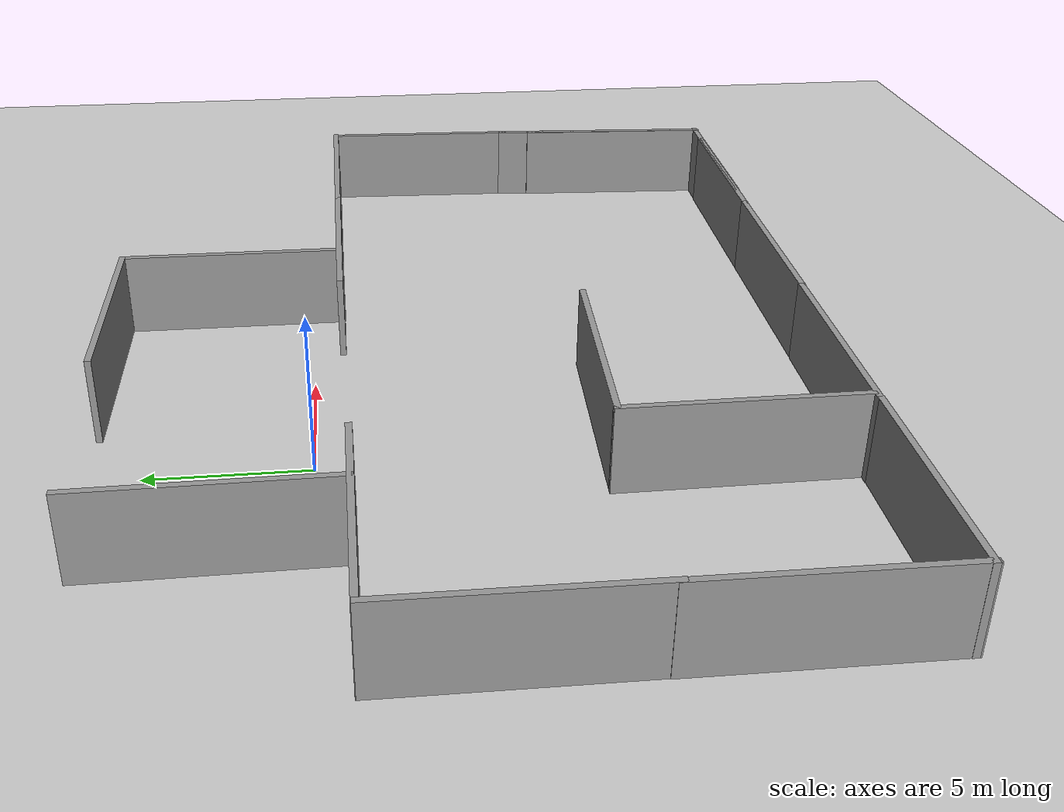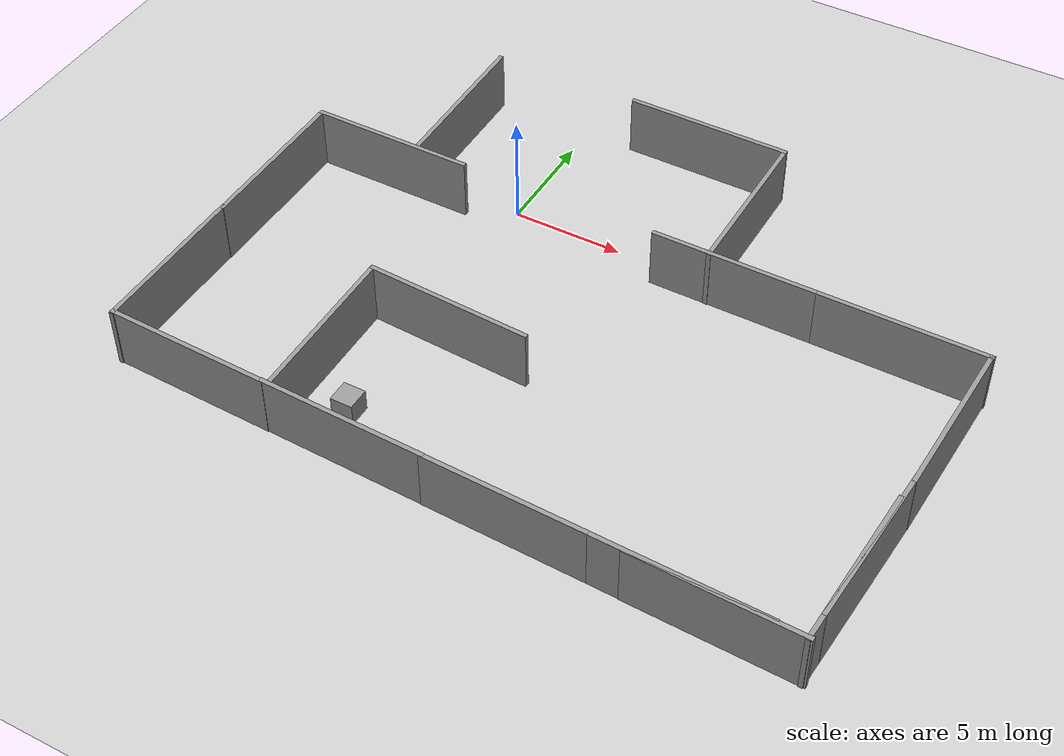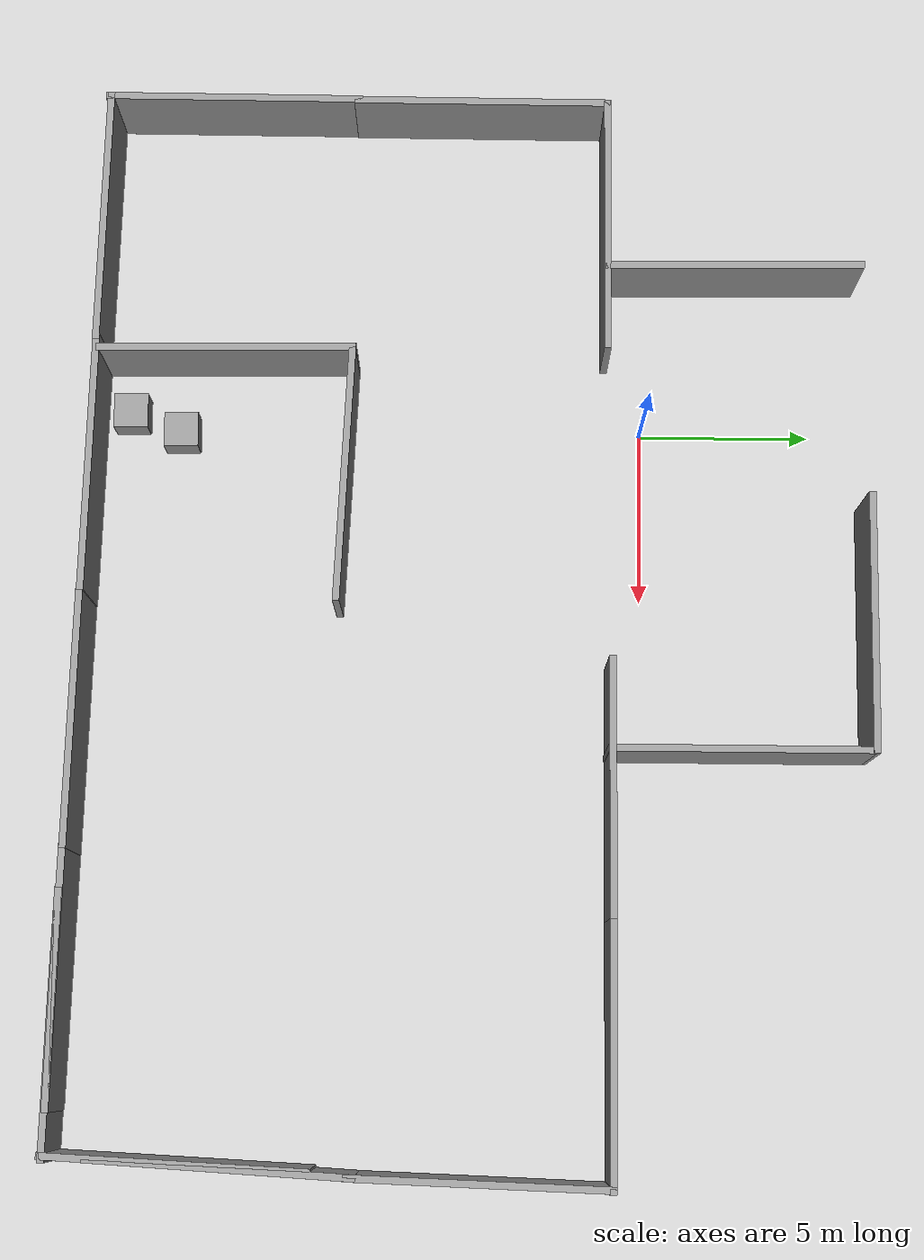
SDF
<sdf version="1.7">
 <world name="default">
  <light name="sun" type="directional">
   <pose>0 0 10 0 -0 0</pose>
   <diffuse>0.8 0.8 0.8 1</diffuse>
   <specular>0.2 0.2 0.2 1</specular>
   <attenuation>
    <range>1000</range>
    <constant>0.9</constant>
    <linear>0.01</linear>
    <quadratic>0.001</quadratic>
   </attenuation>
   <direction>-0.5 0.1 -0.9</direction>
   <spot><inner_angle>0</inner_angle><outer_angle>0</outer_angle><falloff>0</falloff></spot>
  </light>
  <model name="ground_plane">
   <static>1</static>
   <link name="link">
    <collision name="collision">
     <geometry><plane><normal>0 0 1</normal><size>100 100</size></plane></geometry>
     <surface>
      <contact><collide_bitmask>65535</collide_bitmask></contact>
      <friction><ode><mu>100</mu><mu2>50</mu2></ode></friction>
     </surface>
    </collision>
    <visual name="visual">
     <cast_shadows>0</cast_shadows>
     <geometry><plane><normal>0 0 1</normal><size>100 100</size></plane></geometry>
     <material>
      <script><uri>file://media/materials/scripts/gazebo.material</uri><name>Gazebo/Grey</name></script>
     </material>
    </visual>
   </link>
  </model>
  <gravity>0 0 -9.8</gravity>
  <magnetic_field>6e-06 2.3e-05 -4.2e-05</magnetic_field>
  <atmosphere type="adiabatic"/>
  <physics type="ode">
   <max_step_size>0.001</max_step_size>
   <real_time_factor>1</real_time_factor>
   <real_time_update_rate>1000</real_time_update_rate>
  </physics>
  <scene><ambient>0.4 0.4 0.4 1</ambient><background>0.7 0.7 0.7 1</background><shadows>1</shadows></scene>
  <spherical_coordinates>
   <surface_model>EARTH_WGS84</surface_model>
   <latitude_deg>0</latitude_deg>
   <longitude_deg>0</longitude_deg>
   <elevation>0</elevation>
   <heading_deg>0</heading_deg>
  </spherical_coordinates>
  <model name="grey_wall">
   <static>1</static>
   <link name="link">
    <pose>0 0 1.4 0 -0 0</pose>
    <collision name="collision"><geometry><box><size>7.5 0.2 2.8</size></box></geometry></collision>
    <visual name="visual">
     <cast_shadows>0</cast_shadows>
     <geometry><box><size>7.5 0.2 2.8</size></box></geometry>
     <material>
      <script>
       <uri>model://grey_wall/materials/scripts</uri>
       <uri>model://grey_wall/materials/textures</uri>
       <name>vrc/grey_wall</name>
      </script>
     </material>
    </visual>
   </link>
   <pose>-5.72661 -1.05579 0 0 -0 0</pose>
  </model>
  <model name="grey_wall_clone">
   <static>1</static>
   <link name="link">
    <pose>0 0 1.4 0 -0 0</pose>
    <collision name="collision"><geometry><box><size>7.5 0.2 2.8</size></box></geometry></collision>
    <visual name="visual">
     <cast_shadows>0</cast_shadows>
     <geometry><box><size>7.5 0.2 2.8</size></box></geometry>
     <material>
      <script>
       <uri>model://grey_wall/materials/scripts</uri>
       <uri>model://grey_wall/materials/textures</uri>
       <name>vrc/grey_wall</name>
      </script>
     </material>
    </visual>
   </link>
   <pose>10.7401 -0.921867 0 0 -0 0</pose>
  </model>
  <model name="grey_wall_clone_0">
   <static>1</static>
   <link name="link">
    <pose>0 0 1.4 0 -0 0</pose>
    <collision name="collision"><geometry><box><size>7.5 0.2 2.8</size></box></geometry></collision>
    <visual name="visual">
     <cast_shadows>0</cast_shadows>
     <geometry><box><size>7.5 0.2 2.8</size></box></geometry>
     <material>
      <script>
       <uri>model://grey_wall/materials/scripts</uri>
       <uri>model://grey_wall/materials/textures</uri>
       <name>vrc/grey_wall</name>
      </script>
     </material>
    </visual>
   </link>
   <pose>-4.47856 2.62251 0 0 0 -1.56181</pose>
  </model>
  <model name="grey_wall_clone_1">
   <static>1</static>
   <link name="link">
    <pose>0 0 1.4 0 -0 0</pose>
    <collision name="collision"><geometry><box><size>7.5 0.2 2.8</size></box></geometry></collision>
    <visual name="visual">
     <cast_shadows>0</cast_shadows>
     <geometry><box><size>7.5 0.2 2.8</size></box></geometry>
     <material>
      <script>
       <uri>model://grey_wall/materials/scripts</uri>
       <uri>model://grey_wall/materials/textures</uri>
       <name>vrc/grey_wall</name>
      </script>
     </material>
    </visual>
   </link>
   <pose>9.61723 2.70741 -0.007779 0 -0 1.56874</pose>
  </model>
  <model name="grey_wall_clone_2">
   <static>1</static>
   <link name="link">
    <pose>0 0 1.4 0 -0 0</pose>
    <collision name="collision"><geometry><box><size>7.5 0.2 2.8</size></box></geometry></collision>
    <visual name="visual">
     <cast_shadows>0</cast_shadows>
     <geometry><box><size>7.5 0.2 2.8</size></box></geometry>
     <material>
      <script>
       <uri>model://grey_wall/materials/scripts</uri>
       <uri>model://grey_wall/materials/textures</uri>
       <name>vrc/grey_wall</name>
      </script>
     </material>
    </visual>
   </link>
   <pose>5.96181 6.47732 0 0 -0 0</pose>
  </model>
  <model name="grey_wall_clone_3">
   <static>1</static>
   <link name="link">
    <pose>0 0 1.4 0 -0 0</pose>
    <collision name="collision"><geometry><box><size>7.5 0.2 2.8</size></box></geometry></collision>
    <visual name="visual">
     <cast_shadows>0</cast_shadows>
     <geometry><box><size>7.5 0.2 2.8</size></box></geometry>
     <material>
      <script>
       <uri>model://grey_wall/materials/scripts</uri>
       <uri>model://grey_wall/materials/textures</uri>
       <name>vrc/grey_wall</name>
      </script>
     </material>
    </visual>
   </link>
   <pose>-9.40633 -4.72407 0 0 0 -1.57718</pose>
  </model>
  <model name="grey_wall_clone_4">
   <static>1</static>
   <link name="link">
    <pose>0 0 1.4 0 -0 0</pose>
    <collision name="collision"><geometry><box><size>7.5 0.2 2.8</size></box></geometry></collision>
    <visual name="visual">
     <cast_shadows>0</cast_shadows>
     <geometry><box><size>7.5 0.2 2.8</size></box></geometry>
     <material>
      <script>
       <uri>model://grey_wall/materials/scripts</uri>
       <uri>model://grey_wall/materials/textures</uri>
       <name>vrc/grey_wall</name>
      </script>
     </material>
    </visual>
   </link>
   <pose>18.1211 -0.922816 0 0 -0 0</pose>
  </model>
  <model name="grey_wall_clone_5">
   <static>1</static>
   <link name="link">
    <pose>0 0 1.4 0 -0 0</pose>
    <collision name="collision"><geometry><box><size>7.5 0.2 2.8</size></box></geometry></collision>
    <visual name="visual">
     <cast_shadows>0</cast_shadows>
     <geometry><box><size>7.5 0.2 2.8</size></box></geometry>
     <material>
      <script>
       <uri>model://grey_wall/materials/scripts</uri>
       <uri>model://grey_wall/materials/textures</uri>
       <name>vrc/grey_wall</name>
      </script>
     </material>
    </visual>
   </link>
   <pose>21.602 -4.57223 0 0 0 -1.60753</pose>
  </model>
  <model name="grey_wall_clone_5_clone">
   <static>1</static>
   <link name="link">
    <pose>0 0 1.4 0 -0 0</pose>
    <collision name="collision"><geometry><box><size>7.5 0.2 2.8</size></box></geometry></collision>
    <visual name="visual">
     <cast_shadows>0</cast_shadows>
     <geometry><box><size>7.5 0.2 2.8</size></box></geometry>
     <material>
      <script>
       <uri>model://grey_wall/materials/scripts</uri>
       <uri>model://grey_wall/materials/textures</uri>
       <name>vrc/grey_wall</name>
      </script>
     </material>
    </visual>
   </link>
   <pose>21.2451 -11.6938 0 0 0 -1.632</pose>
  </model>
  <model name="grey_wall_clone_3_clone">
   <static>1</static>
   <link name="link">
    <pose>0 0 1.4 0 -0 0</pose>
    <collision name="collision"><geometry><box><size>7.5 0.2 2.8</size></box></geometry></collision>
    <visual name="visual">
     <cast_shadows>0</cast_shadows>
     <geometry><box><size>7.5 0.2 2.8</size></box></geometry>
     <material>
      <script>
       <uri>model://grey_wall/materials/scripts</uri>
       <uri>model://grey_wall/materials/textures</uri>
       <name>vrc/grey_wall</name>
      </script>
     </material>
    </visual>
   </link>
   <pose>-9.47095 -11.9919 0 0 0 -1.57718</pose>
  </model>
  <model name="grey_wall_clone_3_clone_0">
   <static>1</static>
   <link name="link">
    <pose>0 0 1.4 0 -0 0</pose>
    <collision name="collision"><geometry><box><size>7.5 0.2 2.8</size></box></geometry></collision>
    <visual name="visual">
     <cast_shadows>0</cast_shadows>
     <geometry><box><size>7.5 0.2 2.8</size></box></geometry>
     <material>
      <script>
       <uri>model://grey_wall/materials/scripts</uri>
       <uri>model://grey_wall/materials/textures</uri>
       <name>vrc/grey_wall</name>
      </script>
     </material>
    </visual>
   </link>
   <pose>-5.85607 -15.705 0 0 0 -0.029877</pose>
  </model>
  <model name="grey_wall_clone_3_clone_0_clone">
   <static>1</static>
   <link name="link">
    <pose>0 0 1.4 0 -0 0</pose>
    <collision name="collision"><geometry><box><size>7.5 0.2 2.8</size></box></geometry></collision>
    <visual name="visual">
     <cast_shadows>0</cast_shadows>
     <geometry><box><size>7.5 0.2 2.8</size></box></geometry>
     <material>
      <script>
       <uri>model://grey_wall/materials/scripts</uri>
       <uri>model://grey_wall/materials/textures</uri>
       <name>vrc/grey_wall</name>
      </script>
     </material>
    </visual>
   </link>
   <pose>1.50462 -15.9071 0 0 0 -0.029877</pose>
  </model>
  <model name="grey_wall_clone_3_clone_0_clone_0">
   <static>1</static>
   <link name="link">
    <pose>0 0 1.4 0 -0 0</pose>
    <collision name="collision"><geometry><box><size>7.5 0.2 2.8</size></box></geometry></collision>
    <visual name="visual">
     <cast_shadows>0</cast_shadows>
     <geometry><box><size>7.5 0.2 2.8</size></box></geometry>
     <material>
      <script>
       <uri>model://grey_wall/materials/scripts</uri>
       <uri>model://grey_wall/materials/textures</uri>
       <name>vrc/grey_wall</name>
      </script>
     </material>
    </visual>
   </link>
   <pose>8.80996 -16.1401 0 0 0 -0.029877</pose>
  </model>
  <model name="grey_wall_clone_3_clone_0_clone_1">
   <static>1</static>
   <link name="link">
    <pose>0 0 1.4 0 -0 0</pose>
    <collision name="collision"><geometry><box><size>7.5 0.2 2.8</size></box></geometry></collision>
    <visual name="visual">
     <cast_shadows>0</cast_shadows>
     <geometry><box><size>7.5 0.2 2.8</size></box></geometry>
     <material>
      <script>
       <uri>model://grey_wall/materials/scripts</uri>
       <uri>model://grey_wall/materials/textures</uri>
       <name>vrc/grey_wall</name>
      </script>
     </material>
    </visual>
   </link>
   <pose>16.0331 -16.3602 0 0 0 -0.029877</pose>
  </model>
  <model name="grey_wall_clone_3_clone_0_clone_2">
   <static>1</static>
   <link name="link">
    <pose>0 0 1.4 0 -0 0</pose>
    <collision name="collision"><geometry><box><size>7.5 0.2 2.8</size></box></geometry></collision>
    <visual name="visual">
     <cast_shadows>0</cast_shadows>
     <geometry><box><size>7.5 0.2 2.8</size></box></geometry>
     <material>
      <script>
       <uri>model://grey_wall/materials/scripts</uri>
       <uri>model://grey_wall/materials/textures</uri>
       <name>vrc/grey_wall</name>
      </script>
     </material>
    </visual>
   </link>
   <pose>17.3849 -16.426 0 0 0 -0.029877</pose>
  </model>
  <model name="grey_wall_clone_3_clone_0_clone_3">
   <static>1</static>
   <link name="link">
    <pose>0 0 1.4 0 -0 0</pose>
    <collision name="collision"><geometry><box><size>7.5 0.2 2.8</size></box></geometry></collision>
    <visual name="visual">
     <cast_shadows>0</cast_shadows>
     <geometry><box><size>7.5 0.2 2.8</size></box></geometry>
     <material>
      <script>
       <uri>model://grey_wall/materials/scripts</uri>
       <uri>model://grey_wall/materials/textures</uri>
       <name>vrc/grey_wall</name>
      </script>
     </material>
    </visual>
   </link>
   <pose>21.1378 -12.9293 0 0 -0 1.51918</pose>
  </model>
  <model name="grey_wall_0">
   <static>1</static>
   <link name="link">
    <pose>0 0 1.4 0 -0 0</pose>
    <collision name="collision"><geometry><box><size>7.5 0.2 2.8</size></box></geometry></collision>
    <visual name="visual">
     <cast_shadows>0</cast_shadows>
     <geometry><box><size>7.5 0.2 2.8</size></box></geometry>
     <material>
      <script>
       <uri>model://grey_wall/materials/scripts</uri>
       <uri>model://grey_wall/materials/textures</uri>
       <name>vrc/grey_wall</name>
      </script>
     </material>
    </visual>
   </link>
   <pose>-1.90357 -12.0577 0 0 0 -1.56306</pose>
  </model>
  <model name="grey_wall_clone_3_clone_0_clone_4">
   <static>1</static>
   <link name="link">
    <pose>0 0 1.4 0 -0 0</pose>
    <collision name="collision"><geometry><box><size>7.5 0.2 2.8</size></box></geometry></collision>
    <visual name="visual">
     <cast_shadows>0</cast_shadows>
     <geometry><box><size>7.5 0.2 2.8</size></box></geometry>
     <material>
      <script>
       <uri>model://grey_wall/materials/scripts</uri>
       <uri>model://grey_wall/materials/textures</uri>
       <name>vrc/grey_wall</name>
      </script>
     </material>
    </visual>
   </link>
   <pose>1.74579 -8.58863 0 0 0 -0.049064</pose>
  </model>
  <model name="unit_box">
   <pose>-0.469869 -14.9774 0.5 0 -0 0</pose>
   <link name="link">
    <inertial>
     <mass>1</mass>
     <inertia>
      <ixx>0.166667</ixx>
      <ixy>0</ixy>
      <ixz>0</ixz>
      <iyy>0.166667</iyy>
      <iyz>0</iyz>
      <izz>0.166667</izz>
     </inertia>
    </inertial>
    <collision name="collision"><geometry><box><size>1 1 1</size></box></geometry></collision>
    <visual name="visual">
     <geometry><box><size>1 1 1</size></box></geometry>
     <material>
      <script><name>Gazebo/Grey</name><uri>file://media/materials/scripts/gazebo.material</uri></script>
     </material>
    </visual>
   </link>
  </model>
  <model name="unit_box_0">
   <pose>0.085856 -13.4892 0.5 0 -0 0</pose>
   <link name="link">
    <inertial>
     <mass>1</mass>
     <inertia>
      <ixx>0.166667</ixx>
      <ixy>0</ixy>
      <ixz>0</ixz>
      <iyy>0.166667</iyy>
      <iyz>0</iyz>
      <izz>0.166667</izz>
     </inertia>
    </inertial>
    <collision name="collision"><geometry><box><size>1 1 1</size></box></geometry></collision>
    <visual name="visual">
     <geometry><box><size>1 1 1</size></box></geometry>
     <material>
      <script><name>Gazebo/Grey</name><uri>file://media/materials/scripts/gazebo.material</uri></script>
     </material>
    </visual>
   </link>
  </model>
 </world>
</sdf>
